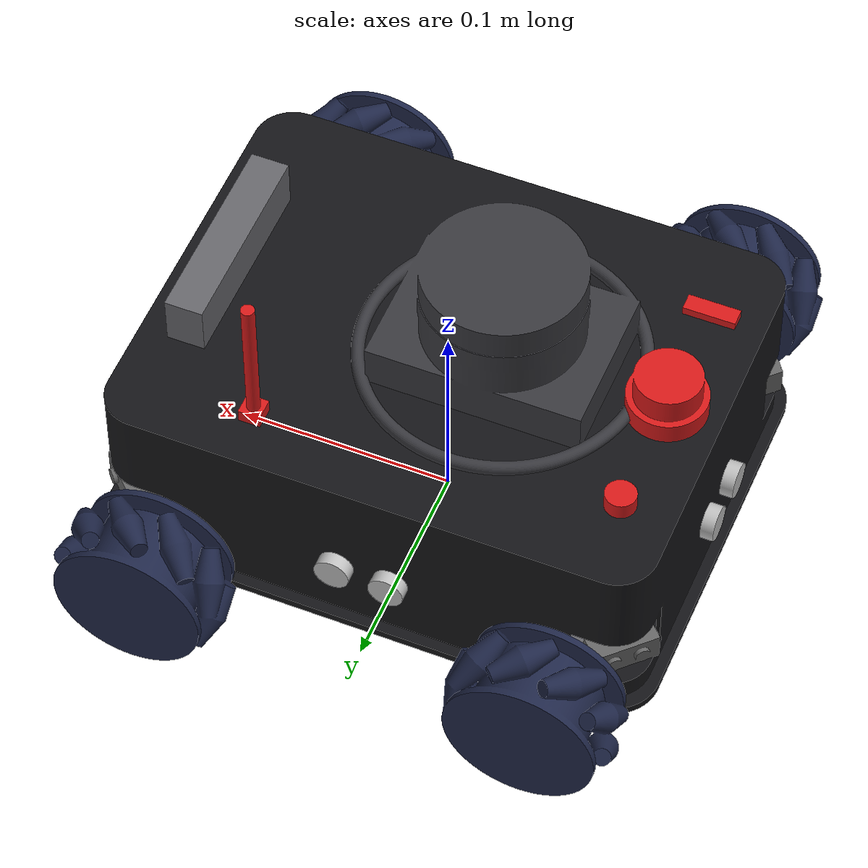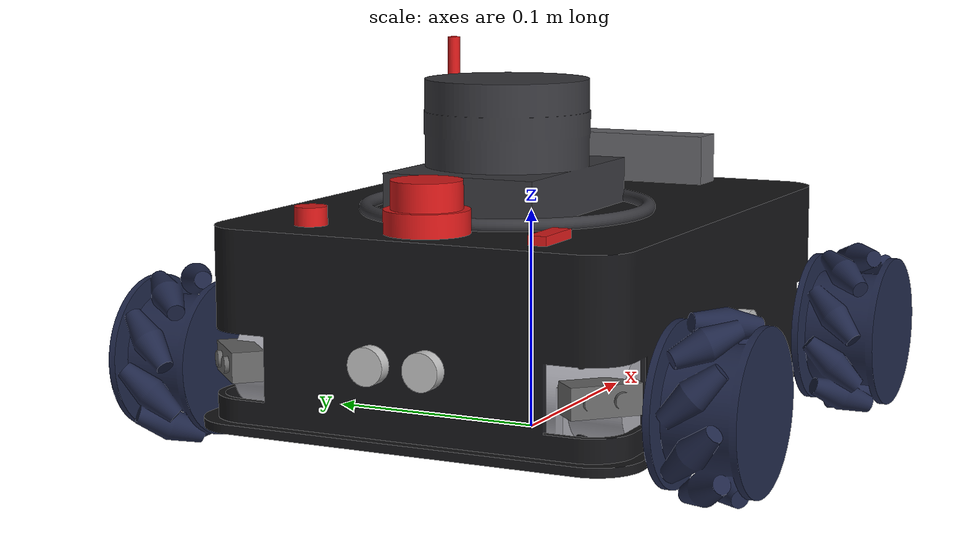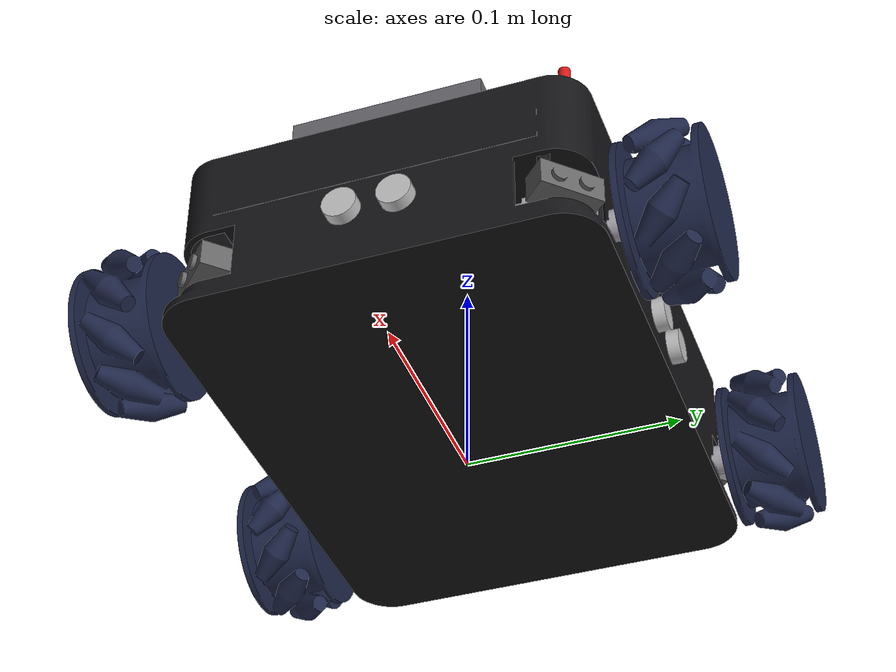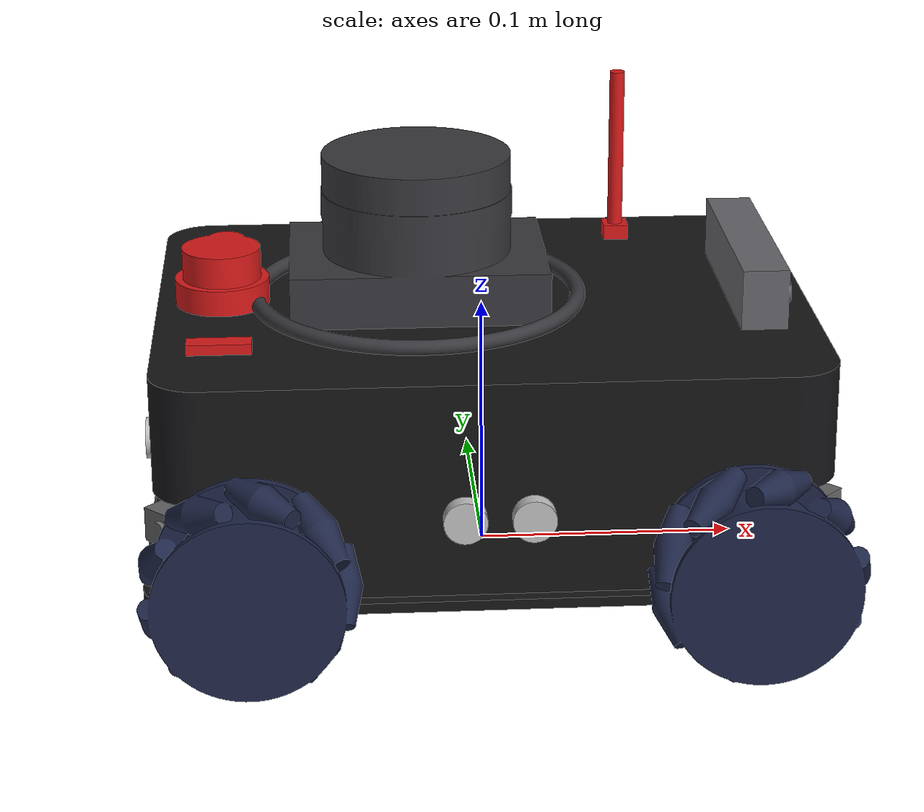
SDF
<?xml version="1.0"?>
<sdf version="1.9" xmlns:gz="http://gazebosim.org/schema">
  <model name="sentinel_mk2">
    <static>false</static>

    <link name="base_link">
      <inertial>
        <pose>0 0 0.054 0 0 0</pose>
        <mass>4.0</mass>
        <inertia><ixx>0.014</ixx><iyy>0.023</iyy><izz>0.033</izz><ixy>0</ixy><ixz>0</ixz><iyz>0</iyz></inertia>
      </inertial>

      <collision name="chassis_col">
        <pose>0 0 0.060 0 0 0</pose>
        <geometry><box><size>0.250 0.190 0.086</size></box></geometry>
      </collision>
      <collision name="wheel_fl_col"><pose>0.09 0.124 0.042 1.5708 0 0</pose>
        <geometry><cylinder><radius>0.042</radius><length>0.038</length></cylinder></geometry>
        <surface><friction><ode><mu>0.005</mu><mu2>0.005</mu2></ode></friction></surface>
      </collision>
      <collision name="wheel_fr_col"><pose>0.09 -0.124 0.042 1.5708 0 0</pose>
        <geometry><cylinder><radius>0.042</radius><length>0.038</length></cylinder></geometry>
        <surface><friction><ode><mu>0.005</mu><mu2>0.005</mu2></ode></friction></surface>
      </collision>
      <collision name="wheel_rl_col"><pose>-0.09 0.124 0.042 1.5708 0 0</pose>
        <geometry><cylinder><radius>0.042</radius><length>0.038</length></cylinder></geometry>
        <surface><friction><ode><mu>0.005</mu><mu2>0.005</mu2></ode></friction></surface>
      </collision>
      <collision name="wheel_rr_col"><pose>-0.09 -0.124 0.042 1.5708 0 0</pose>
        <geometry><cylinder><radius>0.042</radius><length>0.038</length></cylinder></geometry>
        <surface><friction><ode><mu>0.005</mu><mu2>0.005</mu2></ode></friction></surface>
      </collision>

      <!-- ===== visuals: one per Fusion component ===== -->
      <visual name="chassis_visual"><geometry><mesh><uri>model://sentinel_mk2/meshes/Chassis.stl</uri><scale>0.001 0.001 0.001</scale></mesh></geometry>
        <material><ambient>0.06 0.06 0.07 1</ambient><diffuse>0.08 0.08 0.09 1</diffuse><specular>0.2 0.2 0.2 1</specular></material></visual>
      <visual name="drivetrain_visual"><geometry><mesh><uri>model://sentinel_mk2/meshes/Drivetrain_Mecanum.stl</uri><scale>0.001 0.001 0.001</scale></mesh></geometry>
        <material><ambient>0.5 0.5 0.52 1</ambient><diffuse>0.65 0.65 0.68 1</diffuse><specular>0.5 0.5 0.5 1</specular></material></visual>
      <visual name="power_compute_visual"><geometry><mesh><uri>model://sentinel_mk2/meshes/Power_Compute.stl</uri><scale>0.001 0.001 0.001</scale></mesh></geometry>
        <material><ambient>0.1 0.2 0.5 1</ambient><diffuse>0.15 0.3 0.7 1</diffuse></material></visual>
      <visual name="us_front_visual"><geometry><mesh><uri>model://sentinel_mk2/meshes/Sensor_Ultrasonic_Front.stl</uri><scale>0.001 0.001 0.001</scale></mesh></geometry>
        <material><ambient>0.6 0.6 0.6 1</ambient><diffuse>0.75 0.75 0.75 1</diffuse><specular>0.6 0.6 0.6 1</specular></material></visual>
      <visual name="us_rear_visual"><geometry><mesh><uri>model://sentinel_mk2/meshes/Sensor_Ultrasonic_Rear.stl</uri><scale>0.001 0.001 0.001</scale></mesh></geometry>
        <material><ambient>0.6 0.6 0.6 1</ambient><diffuse>0.75 0.75 0.75 1</diffuse><specular>0.6 0.6 0.6 1</specular></material></visual>
      <visual name="us_left_visual"><geometry><mesh><uri>model://sentinel_mk2/meshes/Sensor_Ultrasonic_Left.stl</uri><scale>0.001 0.001 0.001</scale></mesh></geometry>
        <material><ambient>0.6 0.6 0.6 1</ambient><diffuse>0.75 0.75 0.75 1</diffuse><specular>0.6 0.6 0.6 1</specular></material></visual>
      <visual name="us_right_visual"><geometry><mesh><uri>model://sentinel_mk2/meshes/Sensor_Ultrasonic_Right.stl</uri><scale>0.001 0.001 0.001</scale></mesh></geometry>
        <material><ambient>0.6 0.6 0.6 1</ambient><diffuse>0.75 0.75 0.75 1</diffuse><specular>0.6 0.6 0.6 1</specular></material></visual>
      <visual name="ir_fl_visual"><geometry><mesh><uri>model://sentinel_mk2/meshes/Sensor_IR_FL.stl</uri><scale>0.001 0.001 0.001</scale></mesh></geometry>
        <material><ambient>0.3 0.3 0.3 1</ambient><diffuse>0.4 0.4 0.4 1</diffuse></material></visual>
      <visual name="ir_fr_visual"><geometry><mesh><uri>model://sentinel_mk2/meshes/Sensor_IR_FR.stl</uri><scale>0.001 0.001 0.001</scale></mesh></geometry>
        <material><ambient>0.3 0.3 0.3 1</ambient><diffuse>0.4 0.4 0.4 1</diffuse></material></visual>
      <visual name="ir_rl_visual"><geometry><mesh><uri>model://sentinel_mk2/meshes/Sensor_IR_RL.stl</uri><scale>0.001 0.001 0.001</scale></mesh></geometry>
        <material><ambient>0.3 0.3 0.3 1</ambient><diffuse>0.4 0.4 0.4 1</diffuse></material></visual>
      <visual name="ir_rr_visual"><geometry><mesh><uri>model://sentinel_mk2/meshes/Sensor_IR_RR.stl</uri><scale>0.001 0.001 0.001</scale></mesh></geometry>
        <material><ambient>0.3 0.3 0.3 1</ambient><diffuse>0.4 0.4 0.4 1</diffuse></material></visual>
      <visual name="imu_board_visual"><geometry><mesh><uri>model://sentinel_mk2/meshes/Sensor_IMU_BNO085.stl</uri><scale>0.001 0.001 0.001</scale></mesh></geometry>
        <material><ambient>0.1 0.2 0.5 1</ambient><diffuse>0.15 0.3 0.7 1</diffuse></material></visual>
      <visual name="lidar_visual"><geometry><mesh><uri>model://sentinel_mk2/meshes/Sensor_LiDAR_RPLIDAR_A1.stl</uri><scale>0.001 0.001 0.001</scale></mesh></geometry>
        <material><ambient>0.15 0.15 0.16 1</ambient><diffuse>0.22 0.22 0.24 1</diffuse><specular>0.4 0.4 0.4 1</specular></material></visual>
      <visual name="camera_visual"><geometry><mesh><uri>model://sentinel_mk2/meshes/Sensor_Camera_OAKD_Lite.stl</uri><scale>0.001 0.001 0.001</scale></mesh></geometry>
        <material><ambient>0.3 0.3 0.3 1</ambient><diffuse>0.4 0.4 0.42 1</diffuse></material></visual>
      <visual name="alert_module_visual"><geometry><mesh><uri>model://sentinel_mk2/meshes/Alert_Safety_Module.stl</uri><scale>0.001 0.001 0.001</scale></mesh></geometry>
        <material><ambient>0.6 0.08 0.08 1</ambient><diffuse>0.85 0.1 0.1 1</diffuse><specular>0.5 0.3 0.3 1</specular></material></visual>

      <!-- ===== sensors ===== -->
      <!-- IMU BNO085 at the centre of rotation on the base plate -->
      <sensor name="imu" type="imu">
        <pose>0 0 0.023 0 0 0</pose>
        <always_on>1</always_on>
        <update_rate>100</update_rate>
        <visualize>false</visualize>
        <topic>imu</topic>
        <gz_frame_id>imu_link</gz_frame_id>
      </sensor>

      <!-- RPLIDAR A1 on the deck, scan plane at 142 mm -->
      <sensor name="lidar" type="gpu_lidar">
        <pose>-0.025 0 0.142 0 0 0</pose>
        <always_on>1</always_on>
        <update_rate>10</update_rate>
        <visualize>true</visualize>
        <topic>scan</topic>
        <gz_frame_id>lidar_link</gz_frame_id>
        <lidar>
          <scan><horizontal><samples>360</samples><resolution>1</resolution><min_angle>-3.14159</min_angle><max_angle>3.14159</max_angle></horizontal></scan>
          <range><min>0.15</min><max>12.0</max><resolution>0.01</resolution></range>
          <noise><type>gaussian</type><mean>0.0</mean><stddev>0.01</stddev></noise>
        </lidar>
      </sensor>

      <!-- HC-SR04 ultrasonic x4: 15 deg cone, 0.02 - 4.0 m, 10 Hz -->
      <sensor name="us_front" type="gpu_lidar"><pose>0.125 0 0.052 0 0 0</pose><always_on>1</always_on><update_rate>10</update_rate><visualize>true</visualize><topic>us_front</topic><gz_frame_id>us_front_link</gz_frame_id>
        <lidar><scan><horizontal><samples>15</samples><resolution>1</resolution><min_angle>-0.1309</min_angle><max_angle>0.1309</max_angle></horizontal></scan><range><min>0.02</min><max>4.0</max><resolution>0.003</resolution></range><noise><type>gaussian</type><mean>0</mean><stddev>0.005</stddev></noise></lidar></sensor>
      <sensor name="us_rear" type="gpu_lidar"><pose>-0.125 0 0.052 0 0 3.14159</pose><always_on>1</always_on><update_rate>10</update_rate><visualize>true</visualize><topic>us_rear</topic><gz_frame_id>us_rear_link</gz_frame_id>
        <lidar><scan><horizontal><samples>15</samples><resolution>1</resolution><min_angle>-0.1309</min_angle><max_angle>0.1309</max_angle></horizontal></scan><range><min>0.02</min><max>4.0</max><resolution>0.003</resolution></range><noise><type>gaussian</type><mean>0</mean><stddev>0.005</stddev></noise></lidar></sensor>
      <sensor name="us_left" type="gpu_lidar"><pose>0 0.095 0.052 0 0 1.5708</pose><always_on>1</always_on><update_rate>10</update_rate><visualize>true</visualize><topic>us_left</topic><gz_frame_id>us_left_link</gz_frame_id>
        <lidar><scan><horizontal><samples>15</samples><resolution>1</resolution><min_angle>-0.1309</min_angle><max_angle>0.1309</max_angle></horizontal></scan><range><min>0.02</min><max>4.0</max><resolution>0.003</resolution></range><noise><type>gaussian</type><mean>0</mean><stddev>0.005</stddev></noise></lidar></sensor>
      <sensor name="us_right" type="gpu_lidar"><pose>0 -0.095 0.052 0 0 -1.5708</pose><always_on>1</always_on><update_rate>10</update_rate><visualize>true</visualize><topic>us_right</topic><gz_frame_id>us_right_link</gz_frame_id>
        <lidar><scan><horizontal><samples>15</samples><resolution>1</resolution><min_angle>-0.1309</min_angle><max_angle>0.1309</max_angle></horizontal></scan><range><min>0.02</min><max>4.0</max><resolution>0.003</resolution></range><noise><type>gaussian</type><mean>0</mean><stddev>0.005</stddev></noise></lidar></sensor>

      <!-- Sharp GP2Y0A21 IR x4 in the corner pods, +-45 deg, 5 deg beam, 0.10 - 0.80 m, 25 Hz -->
      <sensor name="ir_fl" type="gpu_lidar"><pose>0.113 0.083 0.045 0 0 0.7854</pose><always_on>1</always_on><update_rate>25</update_rate><visualize>true</visualize><topic>ir_fl</topic><gz_frame_id>ir_fl_link</gz_frame_id>
        <lidar><scan><horizontal><samples>5</samples><resolution>1</resolution><min_angle>-0.0436</min_angle><max_angle>0.0436</max_angle></horizontal></scan><range><min>0.10</min><max>0.80</max><resolution>0.002</resolution></range><noise><type>gaussian</type><mean>0</mean><stddev>0.004</stddev></noise></lidar></sensor>
      <sensor name="ir_fr" type="gpu_lidar"><pose>0.113 -0.083 0.045 0 0 -0.7854</pose><always_on>1</always_on><update_rate>25</update_rate><visualize>true</visualize><topic>ir_fr</topic><gz_frame_id>ir_fr_link</gz_frame_id>
        <lidar><scan><horizontal><samples>5</samples><resolution>1</resolution><min_angle>-0.0436</min_angle><max_angle>0.0436</max_angle></horizontal></scan><range><min>0.10</min><max>0.80</max><resolution>0.002</resolution></range><noise><type>gaussian</type><mean>0</mean><stddev>0.004</stddev></noise></lidar></sensor>
      <sensor name="ir_rl" type="gpu_lidar"><pose>-0.113 0.083 0.045 0 0 2.3562</pose><always_on>1</always_on><update_rate>25</update_rate><visualize>true</visualize><topic>ir_rl</topic><gz_frame_id>ir_rl_link</gz_frame_id>
        <lidar><scan><horizontal><samples>5</samples><resolution>1</resolution><min_angle>-0.0436</min_angle><max_angle>0.0436</max_angle></horizontal></scan><range><min>0.10</min><max>0.80</max><resolution>0.002</resolution></range><noise><type>gaussian</type><mean>0</mean><stddev>0.004</stddev></noise></lidar></sensor>
      <sensor name="ir_rr" type="gpu_lidar"><pose>-0.113 -0.083 0.045 0 0 -2.3562</pose><always_on>1</always_on><update_rate>25</update_rate><visualize>true</visualize><topic>ir_rr</topic><gz_frame_id>ir_rr_link</gz_frame_id>
        <lidar><scan><horizontal><samples>5</samples><resolution>1</resolution><min_angle>-0.0436</min_angle><max_angle>0.0436</max_angle></horizontal></scan><range><min>0.10</min><max>0.80</max><resolution>0.002</resolution></range><noise><type>gaussian</type><mean>0</mean><stddev>0.004</stddev></noise></lidar></sensor>
    </link>

    <link name="wheel_fl">
      <pose>0.09 0.124 0.042 0 0 0</pose>
      <inertial><mass>0.01</mass>
        <inertia><ixx>1e-5</ixx><iyy>1e-5</iyy><izz>1e-5</izz><ixy>0</ixy><ixz>0</ixz><iyz>0</iyz></inertia>
      </inertial>
      <visual name="wheel_fl_visual"><pose>-0.090 -0.124 -0.042 0 0 0</pose><geometry><mesh><uri>model://sentinel_mk2/meshes/Mecanum_Wheel_FL.stl</uri><scale>0.001 0.001 0.001</scale></mesh></geometry>
        <material><ambient>0.10 0.12 0.20 1</ambient><diffuse>0.12 0.15 0.28 1</diffuse><specular>0.3 0.3 0.4 1</specular></material></visual>
    </link>
    <joint name="wheel_fl_joint" type="revolute">
      <parent>base_link</parent>
      <child>wheel_fl</child>
      <axis><xyz>0 1 0</xyz>
        <limit><lower>-1e16</lower><upper>1e16</upper></limit>
        <dynamics><damping>0.0</damping><friction>0.0</friction></dynamics>
      </axis>
    </joint>
    <link name="wheel_fr">
      <pose>0.09 -0.124 0.042 0 0 0</pose>
      <inertial><mass>0.01</mass>
        <inertia><ixx>1e-5</ixx><iyy>1e-5</iyy><izz>1e-5</izz><ixy>0</ixy><ixz>0</ixz><iyz>0</iyz></inertia>
      </inertial>
      <visual name="wheel_fr_visual"><pose>-0.090 0.124 -0.042 0 0 0</pose><geometry><mesh><uri>model://sentinel_mk2/meshes/Mecanum_Wheel_FR.stl</uri><scale>0.001 0.001 0.001</scale></mesh></geometry>
        <material><ambient>0.10 0.12 0.20 1</ambient><diffuse>0.12 0.15 0.28 1</diffuse><specular>0.3 0.3 0.4 1</specular></material></visual>
    </link>
    <joint name="wheel_fr_joint" type="revolute">
      <parent>base_link</parent>
      <child>wheel_fr</child>
      <axis><xyz>0 1 0</xyz>
        <limit><lower>-1e16</lower><upper>1e16</upper></limit>
        <dynamics><damping>0.0</damping><friction>0.0</friction></dynamics>
      </axis>
    </joint>
    <link name="wheel_rl">
      <pose>-0.09 0.124 0.042 0 0 0</pose>
      <inertial><mass>0.01</mass>
        <inertia><ixx>1e-5</ixx><iyy>1e-5</iyy><izz>1e-5</izz><ixy>0</ixy><ixz>0</ixz><iyz>0</iyz></inertia>
      </inertial>
      <visual name="wheel_rl_visual"><pose>0.090 -0.124 -0.042 0 0 0</pose><geometry><mesh><uri>model://sentinel_mk2/meshes/Mecanum_Wheel_RL.stl</uri><scale>0.001 0.001 0.001</scale></mesh></geometry>
        <material><ambient>0.10 0.12 0.20 1</ambient><diffuse>0.12 0.15 0.28 1</diffuse><specular>0.3 0.3 0.4 1</specular></material></visual>
    </link>
    <joint name="wheel_rl_joint" type="revolute">
      <parent>base_link</parent>
      <child>wheel_rl</child>
      <axis><xyz>0 1 0</xyz>
        <limit><lower>-1e16</lower><upper>1e16</upper></limit>
        <dynamics><damping>0.0</damping><friction>0.0</friction></dynamics>
      </axis>
    </joint>
    <link name="wheel_rr">
      <pose>-0.09 -0.124 0.042 0 0 0</pose>
      <inertial><mass>0.01</mass>
        <inertia><ixx>1e-5</ixx><iyy>1e-5</iyy><izz>1e-5</izz><ixy>0</ixy><ixz>0</ixz><iyz>0</iyz></inertia>
      </inertial>
      <visual name="wheel_rr_visual"><pose>0.090 0.124 -0.042 0 0 0</pose><geometry><mesh><uri>model://sentinel_mk2/meshes/Mecanum_Wheel_RR.stl</uri><scale>0.001 0.001 0.001</scale></mesh></geometry>
        <material><ambient>0.10 0.12 0.20 1</ambient><diffuse>0.12 0.15 0.28 1</diffuse><specular>0.3 0.3 0.4 1</specular></material></visual>
    </link>
    <joint name="wheel_rr_joint" type="revolute">
      <parent>base_link</parent>
      <child>wheel_rr</child>
      <axis><xyz>0 1 0</xyz>
        <limit><lower>-1e16</lower><upper>1e16</upper></limit>
        <dynamics><damping>0.0</damping><friction>0.0</friction></dynamics>
      </axis>
    </joint>
    <!-- base motion: mecanum_base_sim node applies the resultant wheel wrench (ApplyLinkWrench system in the world) -->
    <plugin filename="gz-sim-joint-controller-system" name="gz::sim::systems::JointController">
      <joint_name>wheel_fl_joint</joint_name>
      <topic>/model/sentinel_mk2/wheel_fl/cmd_vel</topic>
    </plugin>
    <plugin filename="gz-sim-joint-controller-system" name="gz::sim::systems::JointController">
      <joint_name>wheel_fr_joint</joint_name>
      <topic>/model/sentinel_mk2/wheel_fr/cmd_vel</topic>
    </plugin>
    <plugin filename="gz-sim-joint-controller-system" name="gz::sim::systems::JointController">
      <joint_name>wheel_rl_joint</joint_name>
      <topic>/model/sentinel_mk2/wheel_rl/cmd_vel</topic>
    </plugin>
    <plugin filename="gz-sim-joint-controller-system" name="gz::sim::systems::JointController">
      <joint_name>wheel_rr_joint</joint_name>
      <topic>/model/sentinel_mk2/wheel_rr/cmd_vel</topic>
    </plugin>
    <!-- so the wheel angles can be read back and checked, and so RViz can show the wheels turning -->
    <plugin filename="gz-sim-joint-state-publisher-system" name="gz::sim::systems::JointStatePublisher">
      <topic>/model/sentinel_mk2/joint_state</topic>
    </plugin>
    <plugin filename="gz-sim-odometry-publisher-system" name="gz::sim::systems::OdometryPublisher">
      <odom_frame>odom</odom_frame>
      <robot_base_frame>base_link</robot_base_frame>
      <odom_topic>/model/sentinel_mk2/odometry</odom_topic>
      <dimensions>2</dimensions>
      <odom_publish_frequency>50</odom_publish_frequency>
    </plugin>
  </model>
</sdf>
